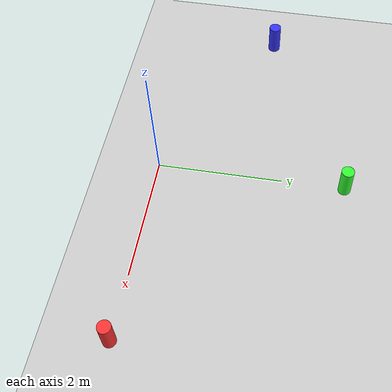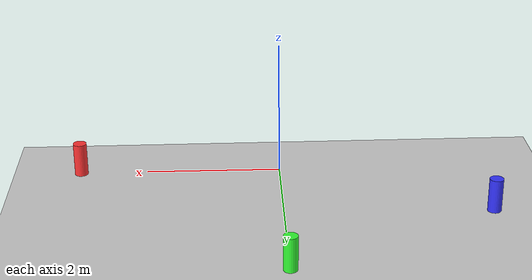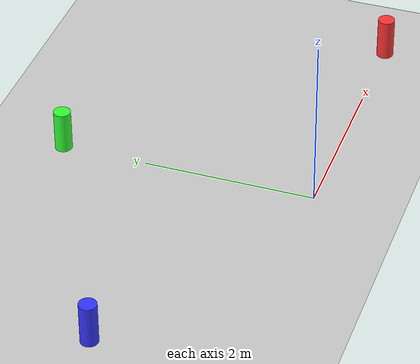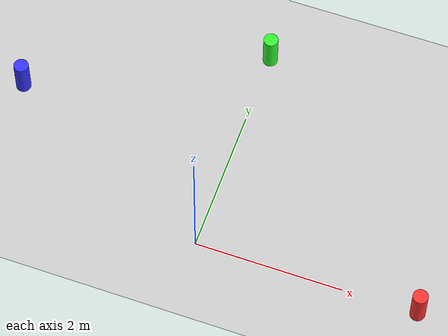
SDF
<?xml version="1.0" ?>
<sdf version="1.6">
  <world name="beacons">
    <scene>
      <shadows>false</shadows>
      <grid>false</grid>
    </scene>
    <physics name="10ms" type="ignored">
      <max_step_size>0.01</max_step_size>
      <real_time_factor>1.0</real_time_factor>
      <real_time_update_rate>100</real_time_update_rate>
    </physics>
    <plugin
      filename="gz-sim-physics-system"
      name="gz::sim::systems::Physics">
    </plugin>
    <plugin
      filename="gz-sim-user-commands-system"
      name="gz::sim::systems::UserCommands">
    </plugin>
    <plugin
      filename="gz-sim-scene-broadcaster-system"
      name="gz::sim::systems::SceneBroadcaster">
    </plugin>
    <plugin
      filename="gz-sim-contact-system"
      name="gz::sim::systems::Contact">
    </plugin>

    <light type="directional" name="sun">
      <cast_shadows>false</cast_shadows>
      <pose>0 0 10 0 0 0</pose>
      <diffuse>0.8 0.8 0.8 1</diffuse>
      <specular>0 0 0 1</specular>
      <attenuation>
        <range>1000</range>
        <constant>0.9</constant>
        <linear>0.01</linear>
        <quadratic>0.001</quadratic>
      </attenuation>
      <direction>-0.5 0.1 -0.9</direction>
    </light>

    <model name="ground_plane">
      <static>true</static>
      <link name="link">
        <collision name="collision">
          <geometry>
            <plane>
              <normal>0 0 1</normal>
              <size>100 100</size>
            </plane>
          </geometry>
        </collision>
        <visual name="visual">
          <geometry>
            <plane>
              <normal>0 0 1</normal>
              <size>100 100</size>
            </plane>
          </geometry>
          <material>
            <ambient>0.8 0.8 0.8 1</ambient>
            <diffuse>0.8 0.8 0.8 1</diffuse>
            <specular>0.8 0.8 0.8 1</specular>
          </material>
        </visual>
      </link>
    </model>

  <model name="beacon_1">
    <static>true</static>
    <pose>3.0 0.0 0.25 0 0 0</pose>
    <link name="link">
      <collision name="collision"><geometry><cylinder><radius>0.1</radius><length>0.5</length></cylinder></geometry></collision>
      <visual name="visual"><geometry><cylinder><radius>0.1</radius><length>0.5</length></cylinder></geometry><material><ambient>1.0 0.2 0.2 1</ambient><diffuse>1.0 0.2 0.2 1</diffuse></material></visual>
    </link>
  </model>
  <model name="beacon_2">
    <static>true</static>
    <pose>0.0 3.0 0.25 0 0 0</pose>
    <link name="link">
      <collision name="collision"><geometry><cylinder><radius>0.1</radius><length>0.5</length></cylinder></geometry></collision>
      <visual name="visual"><geometry><cylinder><radius>0.1</radius><length>0.5</length></cylinder></geometry><material><ambient>0.2 1.0 0.2 1</ambient><diffuse>0.2 1.0 0.2 1</diffuse></material></visual>
    </link>
  </model>
  <model name="beacon_3">
    <static>true</static>
    <pose>-3.0 1.5 0.25 0 0 0</pose>
    <link name="link">
      <collision name="collision"><geometry><cylinder><radius>0.1</radius><length>0.5</length></cylinder></geometry></collision>
      <visual name="visual"><geometry><cylinder><radius>0.1</radius><length>0.5</length></cylinder></geometry><material><ambient>0.2 0.2 1.0 1</ambient><diffuse>0.2 0.2 1.0 1</diffuse></material></visual>
    </link>
  </model>
</world>
</sdf>
